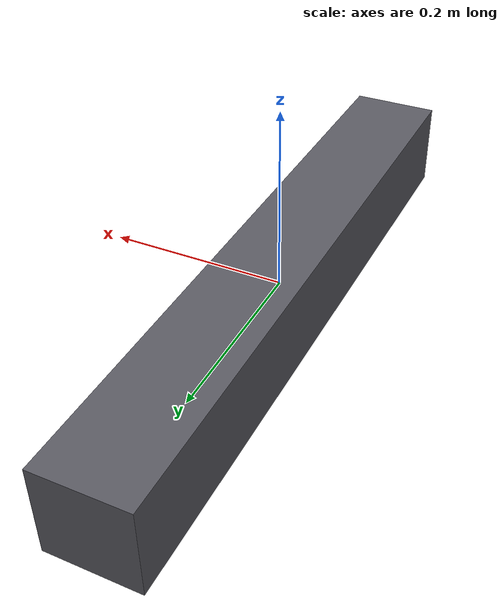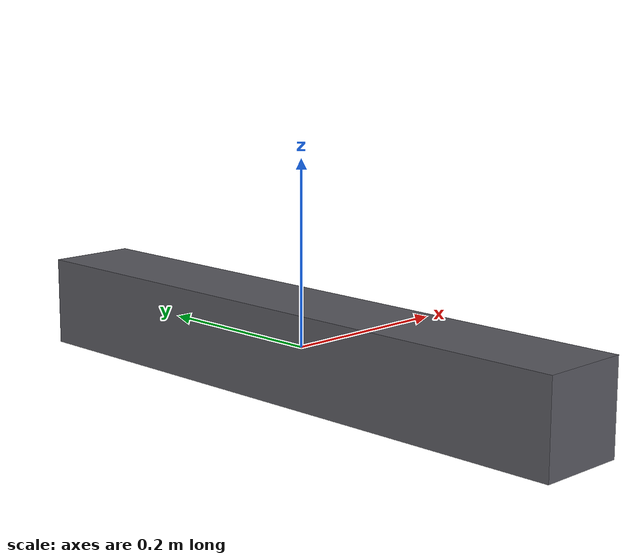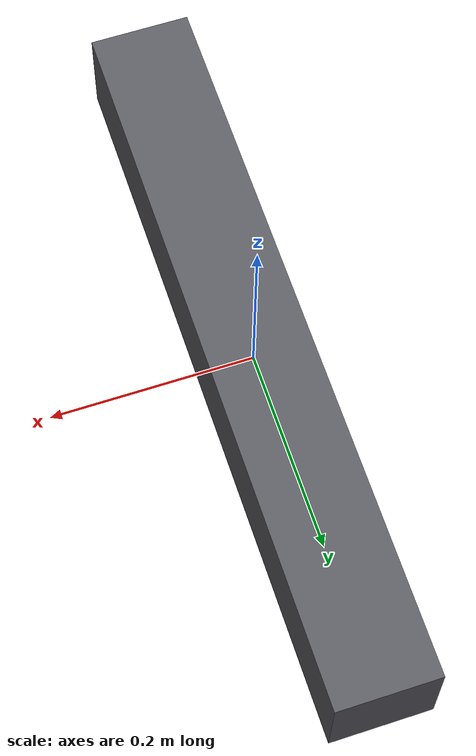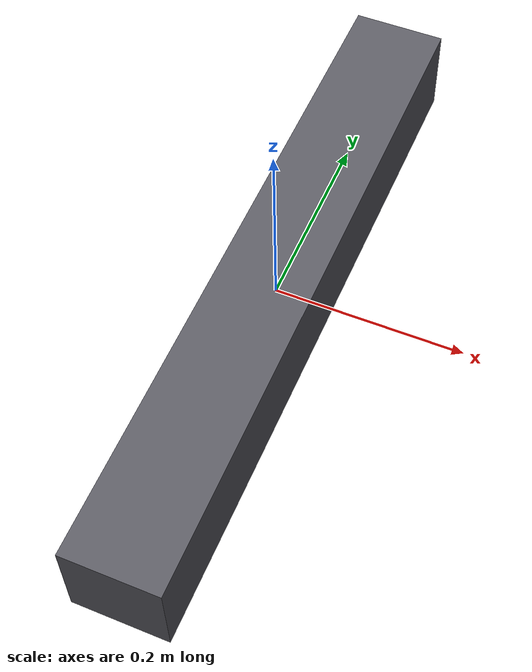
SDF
<?xml version="1.0"?>
<sdf version="1.9">
  <model name="m8_pocket_block">
    <static>true</static>
    <link name="body">
      <collision name="c">
        <geometry><box><size>0.10 0.72 0.10</size></box></geometry>
      </collision>
      <visual name="v">
        <geometry><box><size>0.10 0.72 0.10</size></box></geometry>
        <material><ambient>0.35 0.35 0.38 1</ambient><diffuse>0.35 0.35 0.38 1</diffuse></material>
      </visual>
    </link>
  </model>
</sdf>
